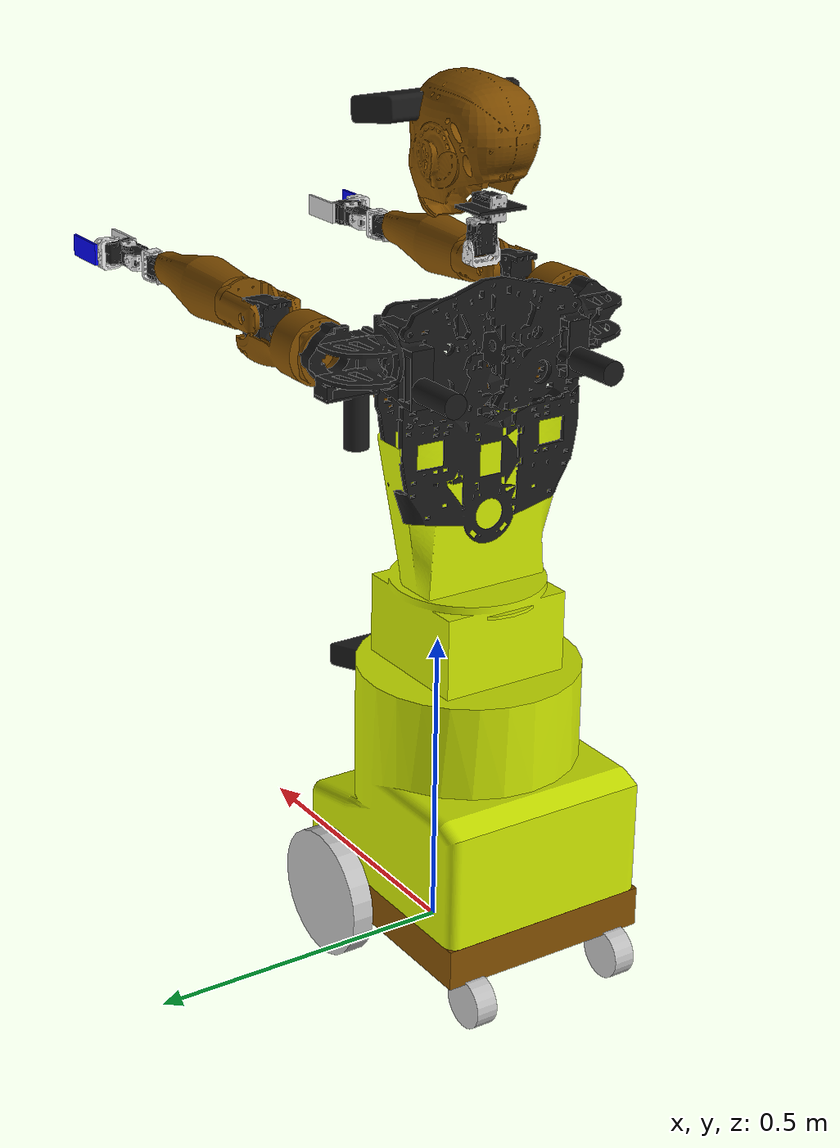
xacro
<?xml version="1.0"?>

<!-- XML namespaces -->
  <robot name="robbie" xmlns:xacro="http://www.ros.org/wiki/xacro">

    <property name="PI" value="3.1415" />
    <property name="M_PI" value="3.14159"/>
    <property name="M_SCALE" value="0.001"/>
    <property name="MESH_EXT" value="stl"/>
    <xacro:include filename="$(find robbie_description)/urdf/robbie_hardware.xacro" />

   <!-- Import all Gazebo-customization elements, including Gazebo colors -->
  <xacro:include filename="$(find robbie_description)/urdf/robbie.gazebo" />

<xacro:my_box name="base_link" lwh="0.41 0.35 0.065" xyz="0 0 -0.032" rpy="0 0 0" mass="0.1" material="Gazebo/FlatBlack">
	        <xacro:gold />
        </xacro:my_box>

 <link name="base_footprint">
      <visual>
        <origin xyz="0 0 0" rpy="0 0 0" />
        <geometry>
          <box size="0.05 0.05 0.001" />
        </geometry>
        <material name="TransparentGreen" />
      </visual>
  </link>

  <xacro:my_cylinder name="left_wheel" l="0.035" r="0.1025" xyz="0 0 0" rpy="1.57 0 0" mass="0.1" material="Gazebo/Grey">
		<xacro:grey1 />
	</xacro:my_cylinder>

  <xacro:my_cylinder name="right_wheel" l="0.035" r="0.1025" xyz="0 0 0" rpy="1.57 0 0" mass="0.1" material="Gazebo/Grey">
		<xacro:grey1 />
	</xacro:my_cylinder>

  <xacro:my_cylinder name="castor_wheel_l" l="0.035" r="0.04" xyz="0 0 0" rpy="1.57 0 0" mass="0.1" material="Gazebo/Grey">
		<xacro:grey1 />
	</xacro:my_cylinder>

  <xacro:my_cylinder name="castor_wheel_r" l="0.035" r="0.04" xyz="0 0 0" rpy="1.57 0 0" mass="0.1" material="Gazebo/Grey">
		<xacro:grey1 />
	</xacro:my_cylinder>

  <link name="deck_link" >
   <visual>
      <geometry>
        <mesh filename="package://robbie_description/meshes/drive_base.stl" scale="${M_SCALE} ${M_SCALE} ${M_SCALE}"/>
      </geometry>
         <xacro:yellow2/>
      <origin rpy="0 0 1.57" xyz=" 0.015 -0.175 -0"/>
    </visual>
    <xacro:default_inertial mass="0.0001" />

  </link>

 <xacro:my_cylinder name="pan_link" l="0.005" r="0.1" xyz="0.0 0 -0.02" rpy="0 0 0" mass="0.2" material="Gazebo/Grey">
			<xacro:yellow2 />
		</xacro:my_cylinder>

<!-- ##############################   upper torso   ##################333333-->

<link name="lower_torso" >
   <visual>
      <geometry>
        <mesh filename="package://robbie_description/meshes/chest_lower.stl" scale="${M_SCALE} ${M_SCALE} ${M_SCALE}"/>
      </geometry>
         <xacro:yellow2/>
      <origin rpy="0 0 1.57" xyz="0 0 0"/>
    </visual>
  </link>

<link name="upper_torso" >
   <visual>
      <geometry>
        <mesh filename="package://robbie_description/meshes/chest.stl" scale="${M_SCALE} ${M_SCALE} ${M_SCALE}"/>
      </geometry>
         <xacro:black/>
      <origin rpy="0 0 -1.57" xyz="0.04 0 -0.15"/>
    </visual>
  </link>

<link name="upper_chest" >
   <visual>
      <geometry>
        <mesh filename="package://robbie_description/meshes/chest_cover.stl" scale="${M_SCALE} ${M_SCALE} ${M_SCALE}"/>
      </geometry>
         <xacro:gold/>
      <origin rpy="0 0 1.57" xyz="0 0 -0.085"/>
    </visual>
  </link>

<!-- ##############################   right arm ##################333333-->
<link name="right_shoulder_tilt" >
   <visual>
      <geometry>
        <mesh filename="package://robbie_description/meshes/right_shoulder_tilt_assy.stl" scale="${M_SCALE} ${M_SCALE} ${M_SCALE}"/>
      </geometry>
       <xacro:black />
      <origin rpy="0 0 1.57" xyz="0 -0.05 -0.05"/>
    </visual>
  <xacro:default_inertial mass="0.05" />
  </link>

<link name="right_shoulder_lift" >
   <visual>
      <geometry>
        <mesh filename="package://robbie_description/meshes/right_shoulder_assy.stl" scale="${M_SCALE} ${M_SCALE} ${M_SCALE}"/>
      </geometry>
       <xacro:black />
      <origin rpy="-1.57 0 1.57" xyz="-0.01 0 -0.025"/>
    </visual>
  <xacro:default_inertial mass="0.05" />
  </link>

<link name="right_elbow_link" >
   <visual>
      <geometry>
        <mesh filename="package://robbie_description/meshes/gearbox.stl" scale="${M_SCALE} ${M_SCALE} ${M_SCALE}"/>
      </geometry>
       <xacro:black/>
      <origin rpy="0 0 0" xyz="0 0 0"/>
    </visual>
  <xacro:default_inertial mass="0.05" />
  </link>

  <link name="right_shoulder_rotate" >
   <visual>
      <geometry>
        <mesh filename="package://robbie_description/meshes/right_upper_arm.stl" scale="${M_SCALE} ${M_SCALE} ${M_SCALE}"/>
      </geometry>
       <xacro:gold/>
      <origin rpy="0 1.57 0" xyz="-0.19 0 0"/>
    </visual>
  <xacro:default_inertial mass="0.05" />
  </link>

  <link name="right_elbow" >
   <visual>
      <geometry>
        <mesh filename="package://robbie_description/meshes/elbow_pivot.stl" scale="${M_SCALE} ${M_SCALE} ${M_SCALE}"/>
      </geometry>
       <xacro:gold />
      <origin rpy="0 0 3.14" xyz="-0.025 -0.055 -0.02"/>
    </visual>
  <xacro:default_inertial mass="0.05" />
  </link>

 <link name="right_forearm_link">
    <visual>
      <geometry>
        <mesh filename="package://robbie_description/meshes/fore_arm.stl" scale="${M_SCALE} ${M_SCALE} ${M_SCALE}"/>
      </geometry>
        <xacro:gold />
      <origin rpy="0 1.57 0" xyz="-0.23 0 0"/>
    </visual>
    <xacro:default_inertial mass="0.05" />
  </link>

  <!-- wrist_yaw_ joint-->
  <xacro:ax12 name="wrist_yaw_servo" xyz="0 0 0" rpy="-1.57 0 -1.57" />
  <xacro:F3_bracket name="wrist_yaw_servo_bracket_f3" xyz="0 0.005 0" rpy="1.57 0 -1.57" />
   <xacro:F2_bracket name="right_wrist_yaw_bracket_f2" xyz="0 0 0" rpy="-1.57 0 -1.57" />

  <!-- wrist_tilt joint-->
  <xacro:ax12 name="wrist_tilt_servo" xyz="0 0 0" rpy="0 -1.57 0" />
  <xacro:F2_bracket name="wrist_tilt_bracket_f2" xyz="0 0 0" rpy="0 -1.57 0" /><!--here-->

 <xacro:F3_bracket name="gripper_bracket_f3" xyz="0 0 0" rpy="1.57 0 -1.57" />

<!-- Gripper_joint-->
  <xacro:ax12 name="gripper_servo" xyz="0 0 0" rpy="1.57 0 0" />
  <xacro:F2_bracket name="gripper_bracket_f2" xyz="0 0 0" rpy="1.57 0 0" />

  <xacro:my_box name="right_finger_link" lwh="-0.08 0.005 0.035" xyz="-0.04 0 0" rpy="0 0 0" mass="0.1" material="Gazebo/FlatBlack">
	        <xacro:blue1 />
        </xacro:my_box>

  <xacro:my_box name="left_finger_link" lwh="0.08 0.005 0.035" xyz="-0.04 0 0" rpy="0 0 0" mass="0.1" material="Gazebo/FlatBlack">
	        <xacro:grey3/>
        </xacro:my_box>

<!-- ##############################   left arm ##################333333-->
<link name="left_shoulder_tilt" >
   <visual>
      <geometry>
        <mesh filename="package://robbie_description/meshes/left_shoulder_tilt_assy.stl" scale="${M_SCALE} ${M_SCALE} ${M_SCALE}"/>
      </geometry>
       <xacro:black />
      <origin rpy="0 0 1.57" xyz="0 0.0 -0.0"/>
    </visual>
   <xacro:default_inertial mass="0.05" />
  </link>

  <link name="left_shoulder_lift" >
   <visual>
      <geometry>
        <mesh filename="package://robbie_description/meshes/left_shoulder_assy.stl" scale="${M_SCALE} ${M_SCALE} ${M_SCALE}"/>
      </geometry>
       <xacro:black />
      <origin rpy="-1.57 0 1.57" xyz="0 -0.06 0"/>
    </visual>
  <xacro:default_inertial mass="0.05" />
  </link>

<link name="left_shoulder_rotate" >
   <visual>
      <geometry>
        <mesh filename="package://robbie_description/meshes/right_upper_arm.stl" scale="${M_SCALE} ${M_SCALE} ${M_SCALE}"/>
      </geometry>
       <xacro:gold/>
      <origin rpy="0 1.57 0" xyz="-0.19 0 0"/>
    </visual>
  <xacro:default_inertial mass="0.05" />
  </link>

<link name="left_elbow_link" >
   <visual>
      <geometry>
        <mesh filename="package://robbie_description/meshes/gearbox.stl" scale="${M_SCALE} ${M_SCALE} ${M_SCALE}"/>
      </geometry>
       <xacro:black/>
      <origin rpy="0 0 0" xyz="0 0 0"/>
    </visual>
  <xacro:default_inertial mass="0.05" />

  </link>

<link name="left_elbow" >
   <visual>
      <geometry>
        <mesh filename="package://robbie_description/meshes/elbow_pivot.stl" scale="${M_SCALE} ${M_SCALE} ${M_SCALE}"/>
      </geometry>
       <xacro:gold />
      <origin rpy="0 0 3.14" xyz="-0.025 -0.055 -0.02"/>
    </visual>
  <xacro:default_inertial mass="0.05" />
  </link>

 <link name="left_forearm_link">
    <visual>
      <geometry>
        <mesh filename="package://robbie_description/meshes/fore_arm.stl" scale="${M_SCALE} ${M_SCALE} ${M_SCALE}"/>
      </geometry>
        <xacro:gold />
      <origin rpy="0 1.57 0" xyz="-0.23 0 0"/>
    </visual>
  <xacro:default_inertial mass="0.05" />
  </link>

 <!-- left_wrist_pan_ joint-->

  <xacro:F3_bracket name="left_wrist_pan_servo_bracket_f3" xyz="0 0.005 0" rpy="1.57 0 -1.57" />

 <!-- left_wrist_yaw joint-->
  <xacro:ax12 name="left_wrist_yaw_servo" xyz="0.0 0 0" rpy="-1.57 0 -1.57" />
  <xacro:F2_bracket name="left_wrist_yaw_bracket_f2" xyz="0 0 0" rpy="-1.57 0 -1.57" />

  <!-- left_wrist_tilt joint-->
  <xacro:ax12 name="left_wrist_tilt_servo" xyz="0 0 0" rpy="0 -1.57 0" />
  <xacro:F2_bracket name="left_wrist_tilt_bracket_f2" xyz="0 0 0" rpy="0 -1.57 0" />

 <xacro:F3_bracket name="left_gripper_bracket_f3" xyz="0 0 0" rpy="1.57 0 -1.57" />

<!-- left_Gripper_joint-->
  <xacro:ax12 name="left_gripper_servo" xyz="0 0 0" rpy="1.57 0 0" />
  <xacro:F2_bracket name="left_gripper_bracket_f2" xyz="0 0 0" rpy="1.57 0 0" />

  <xacro:my_box name="left_right_finger_link" lwh="-0.08 0.005 0.035" xyz="-0.04 0 0" rpy="0 0 0" mass="0.1" material="Gazebo/FlatBlack">
	        <xacro:blue1 />
        </xacro:my_box>

  <xacro:my_box name="left_left_finger_link" lwh="0.08 0.005 0.035" xyz="-0.04 0 0" rpy="0 0 0" mass="0.1" material="Gazebo/FlatBlack">
	        <xacro:grey3/>
        </xacro:my_box>

<!-- head details-->
  <xacro:F2_bracket name="head_tilt_bracket" xyz="0 0 0" rpy="0 3.1415 0"/>

  <xacro:ax12 name="head_tilt_link" xyz="0 0 0" rpy="3.1415 0 0">
	</xacro:ax12>

  <xacro:F3_bracket name="head_pan_bracket" xyz="0 0 0" rpy="0 0 0"/>

  <xacro:ax12 name="head_pan_link" xyz="0 0 0" rpy=" 1.57 0 1.57">
	</xacro:ax12>

  <xacro:F3_bracket name="neck_link" xyz="0 0 0" rpy="1.57 0 -1.570" />

  <xacro:my_box name="head_base_link" lwh="0.06 0.08 0.005" xyz="0 0 0" rpy="0 0 0" mass="0.1" material="Gazebo/FlatBlack">
		<xacro:black />
	</xacro:my_box>

  <link name="head_link" >
   <visual>
      <geometry>
        <mesh filename="package://robbie_description/meshes/head1.stl" scale="${M_SCALE} ${M_SCALE} ${M_SCALE}"/>
      </geometry>
         <material name="gold">
	  <color rgba="0.5 0.3 0 1.0"/>
	</material>
      <origin rpy="0 0 1.57" xyz="0 0 0"/>
    </visual>
  <xacro:default_inertial mass="0.05" />
  </link>

  <link name="head_link_fake">
      <inertial>
        <mass value="0.0001" />
        <origin xyz="0 0 0" />
        <inertia ixx="0.0001" ixy="0.0" ixz="0.0"
                 iyy="0.0001" iyz="0.0"
                 izz="0.0001" />
      </inertial>
    </link>

   <link name="kinect_link">
      <inertial>
        <mass value="1.0" />
        <origin xyz="0 0 0" />
        <inertia ixx="1.0" ixy="0.0" ixz="0.0"
                 iyy="1.0" iyz="0.0"
                 izz="1.0" />
      </inertial>

      <visual>
        <origin xyz=" 0 0 0 " rpy="0 0 0" />
        <geometry>
          <mesh filename="package://robbie_description/meshes/kinect.stl" scale="${M_SCALE} ${M_SCALE} ${M_SCALE}"/>
        </geometry>
        <xacro:ax12_color />
      </visual>

      <collision>
        <origin xyz="0 0 0" rpy="0 0 0" />
        <geometry>
          <mesh filename="package://robbie_description/meshes/kinect.stl" scale="${M_SCALE} ${M_SCALE} ${M_SCALE}"/>
          </geometry>
      </collision>

    </link>

  <link name="head_cam_link">
      <inertial>
        <mass value="1.0" />
        <origin xyz="0 0 0" />
        <inertia ixx="1.0" ixy="0.0" ixz="0.0"
                 iyy="1.0" iyz="0.0"
                 izz="1.0" />
      </inertial>

      <visual>
        <origin xyz=" 0 0 0 " rpy="0 0 0" />
        <geometry>
          <mesh filename="package://robbie_description/meshes/kinect.stl" scale="${M_SCALE} ${M_SCALE} ${M_SCALE}"/>
        </geometry>
        <xacro:ax12_color />
      </visual>

      <collision>
        <origin xyz="0 0 0" rpy="0 0 0" />
        <geometry>
          <mesh filename="package://robbie_description/meshes/kinect.stl" scale="${M_SCALE} ${M_SCALE} ${M_SCALE}"/>
          </geometry>
      </collision>

    </link>

<!-- virtal joints-->
<link name="right_gripper_link">
    <visual>
      <origin rpy="0 0 0" xyz="0.05 0 0"/>
      <geometry>
        <box size="0.001 0.001 0.001"/>
      </geometry>
    </visual>
    <collision>
      <origin rpy="0 0 0" xyz="0.05 0 0"/>
      <geometry>
        <box size="0.001 0.001 0.001"/>
      </geometry>
    </collision>
  </link>
<link name="left_gripper_link">
    <visual>
      <origin rpy="0 0 0" xyz="-0.05 0 0"/>
      <geometry>
        <box size="0.001 0.001 0.001"/>
      </geometry>
    </visual>
    <collision>
      <origin rpy="0 0 0" xyz="-0.05 0 0"/>
      <geometry>
        <box size="0.001 0.001 0.001"/>
      </geometry>
    </collision>
  </link>

<!-- Used for fixing robot to Gazebo 'base_link' -->
  <link name="world"/>

  <joint name="fixed" type="fixed">
    <parent link="world"/>
    <child link="base_footprint"/>
  </joint>

<!-- ##############################   joints ##################333333-->
<joint name="base_footprint_joint" type="fixed">
    	<parent link="base_footprint" />
    	<child link="base_link" />
    	<origin xyz="-0.1 0 0.15" rpy="0 0 0" />
	</joint>

<joint name="base_link_joint" type="fixed">
    	<parent link="base_link" />
    	<child link="deck_link" />
    	<origin xyz="0 0 0.138" rpy="0 0 0" />
	</joint>

  <joint name="base_l_wheel_joint" type="fixed">
    	<parent link="base_link" />
    	<child link="left_wheel" />
    	<origin xyz="0.1 -0.2 -0.04" rpy="0 0 0" />
	</joint>

  <joint name="base_r_wheel_joint" type="fixed">
    	<parent link="base_link" />
    	<child link="right_wheel" />
    	<origin xyz="0.1 0.2 -0.04" rpy="0 0 0" />
	</joint>

  <joint name="castor_wheel_joint_l" type="fixed">
    	<parent link="base_link" />
    	<child link="castor_wheel_l" />
    	<origin xyz="-0.20 -0.13 -0.1" rpy="0 0 0" />
	</joint>

  <joint name="castor_wheel_joint_r" type="fixed">
    	<parent link="base_link" />
    	<child link="castor_wheel_r" />
    	<origin xyz="-0.20 0.13 -0.1" rpy="0 0 0" />
	</joint>
<!--#################  Upper torso#############################-->
 <joint name="pan_joint" type="revolute">
    	<parent link="deck_link" />
    	<child link="pan_link" />
    	<origin xyz="0 0 0.35" rpy="0 0 0" />
        <axis xyz="0 0 1" />
        <limit lower="-1" upper="1" effort="10" velocity="0" />
	</joint>

  <joint name="torso_lower_link" type="fixed">
    	<parent link="pan_link" />
    	<child link="lower_torso" />
    	<origin xyz="0.0 0.005 0." rpy="0 0 0" />
	</joint>

  <joint name="torso_link" type="fixed">
    	<parent link="pan_link" />
    	<child link="upper_torso" />
    	<origin xyz="0.0 0.005 0.465" rpy="0 0 0" />
	</joint>

<joint name="chest_link" type="fixed">
    	<parent link="upper_torso" />
    	<child link="upper_chest" />
    	<origin xyz="0.065 0 -0.04" rpy="0 0 0" />
	</joint>

<joint name="right_arm_tilt_joint" type="revolute">
    	<parent link="upper_torso" />
    	<child link="right_shoulder_tilt" />
    	<origin xyz="0 -0.14 -0.045" rpy="0 0 0" />
        <axis xyz="1 0 0" />
        <limit lower="-1.34" upper="0.1" effort="10" velocity="1" />
	</joint>

<joint name="right_arm_lift_joint" type="revolute">
    	<parent link="right_shoulder_tilt" />
    	<child link="right_shoulder_lift" />
    	<origin xyz="0 -0.078 -0.042" rpy="0 0 0" />
        <axis xyz="0 1 0" />
        <limit lower="-1.57" upper="1.57" effort="10" velocity="1" />
	</joint>

<joint name="right_arm_rotate_joint" type="revolute">
    	<parent link="right_shoulder_lift" />
    	<child link="right_shoulder_rotate" />
    	<origin xyz="0.255 -0.01 0" rpy="0 0 0" />
        <axis xyz="1 0 0" />
        <limit lower="-2.6" upper="2.6" effort="10" velocity="1" />
	</joint>

<joint name="right_elbow_link" type="fixed">
    	<parent link="right_shoulder_rotate" />
    	<child link="right_elbow_link" />
    	<origin xyz="-0.01 0 0.01" rpy="0 0 0" />
        </joint>

<joint name="right_arm_elbow_joint" type="revolute">
    <parent link="right_elbow_link"/>
    <child link="right_elbow"/>
    <origin xyz="0.01 0.01 0.0" rpy="0 0 0" />
    <axis xyz="0 1 0" />
   <limit lower="-2.20" upper="0.1" effort="10" velocity="10" />
  </joint>

  <joint name="right_arm_forearm_link" type="fixed">
    <parent link="right_elbow"/>
    <child link="right_forearm_link"/>
    <origin xyz="0.31 -0.0 -0.0" rpy="0 0 0" />
  </joint>

  <!--right_arm_wrist_yaw_joint-->
  <joint name="right_arm_wrist_yaw_bracket" type="fixed">
    	<parent link="right_forearm_link" />
    	<child link="wrist_yaw_servo_bracket_f3" />
    	<origin xyz="0.0 0.0 0.0" rpy="0 0 0" />

	</joint>
  <joint name="right_arm_wrist_yaw_bracket1" type="fixed">
    	<parent link="wrist_yaw_servo_bracket_f3" />
    	<child link="wrist_yaw_servo" />
    	<origin xyz="0.04 0 0.0" rpy="0 0 0" />
        <axis xyz="0 0 1" />
    	<limit lower="-2.61" upper="2.61" effort="10" velocity="1" />
      	<dynamics damping="0.0"/>
	</joint>

   <joint name="right_arm_wrist_yaw_joint" type="revolute">
    	<parent link="wrist_yaw_servo" />
    	<child link="right_wrist_yaw_bracket_f2" />
    	<origin xyz="0.0 0 0.0" rpy="0 0 0" />
        <axis xyz="0 0 1" />
    	<limit lower="-2.61" upper="2.61" effort="10" velocity="1" />
	</joint>

<joint name="right_arm_wrist_tilt1_bracket" type="fixed">
    	<parent link="right_wrist_yaw_bracket_f2" />
    	<child link="wrist_tilt_bracket_f2" />
    	<origin xyz="0.053 0 0.0" rpy="0 0 0" />
        <axis xyz="0 0 1" />

	</joint>

<!--wrist_tilt_joint-->
  <joint name="right_arm_wrist_tilt_joint" type="revolute">
    	<parent link="wrist_tilt_bracket_f2" />
    	<child link="wrist_tilt_servo" />
    	<origin xyz="0 0 0" rpy="0 0 0" />
        <axis xyz="0 1 0" />
    	<limit lower="-1.57" upper="1.57" effort="10" velocity="1" />
      	<dynamics damping="0.0"/>
	</joint>

  <joint name="right_arm_gripper_bracket" type="fixed">
    	<parent link="wrist_tilt_servo" />
    	<child link="gripper_bracket_f3" />
    	<origin xyz="0.04 0 0.0" rpy="0 0 0" /><!--now-->
	</joint>

   <joint name="right_arm_gripper_servo" type="fixed">
    	<parent link="gripper_bracket_f3" />
    	<child link="gripper_servo" />
    	<origin xyz="0.02 -0.015 0.0" rpy="0 0 0" />
	</joint>

  <joint name="right_gripper_joint" type="fixed">
    <parent link="gripper_bracket_f3"/>
    <child link="right_gripper_link"/>
    <origin xyz="0.06 -0.01 0" rpy="0 0 0" />
  </joint>

<!-- gripper_joint-->
   <joint name="right_arm_gripper_joint" type="revolute">
    	<parent link="gripper_servo" />
    	<child link="gripper_bracket_f2" />
    	<origin xyz="0 0.0 0.0" rpy="0 0 0" />
        <axis xyz="0 0 1" />
    	<limit lower="-0.1" upper="0.50" effort="10" velocity="1" />
      	<dynamics damping="0.0"/>
	</joint>

  <joint name="right_arm_finger_link_l" type="fixed">
    	<parent link="gripper_servo" />
    	<child link="left_finger_link" />
    	<origin xyz="0.08 0.04 0" rpy="0 0 0" />

	</joint>
<!-- moving finger   ############-->
  <joint name="right_arm_finger_link_r" type="fixed">
    	<parent link="gripper_bracket_f2" />
    	<child link="right_finger_link" />
    	<origin xyz="0.08 -0.03 0" rpy="0 0 0" />
	</joint>

<!--##########################        left arm             #############################-->
<joint name="left_arm_tilt_joint" type="revolute">
    	<parent link="upper_torso" />
    	<child link="left_shoulder_tilt" />
    	<origin xyz="0.003 0.142 -0.05" rpy="0 0 0" />
        <axis xyz="-1 0 0" />
        <limit lower="-1.34" upper="0.03" effort="10" velocity="1" />
	</joint>

<joint name="left_arm_lift_joint" type="revolute">
    	<parent link="left_shoulder_tilt" />
    	<child link="left_shoulder_lift" />
    	<origin xyz="0 0.08 -0.04" rpy="0 0 0" />
        <axis xyz="0 1 0" />
        <limit lower="-1.57" upper="1.57" effort="10" velocity="1" />
	</joint>

<joint name="left_arm_rotate_joint" type="revolute">
    	<parent link="left_shoulder_lift" />
    	<child link="left_shoulder_rotate" />
    	<origin xyz="0.24 0 0" rpy="0 0 0" />
        <axis xyz="1 0 0" />
        <limit lower="-2.6" upper="2.6" effort="10" velocity="1" />
	</joint>

<joint name="left_elbow_link" type="fixed">
    	<parent link="left_shoulder_rotate" />
    	<child link="left_elbow_link" />
    	<origin xyz="-0.01 0 0.008" rpy="0 0 0" />
	</joint>

<joint name="left_arm_elbow_joint" type="revolute">
    <parent link="left_elbow_link"/>
    <child link="left_elbow"/>
    <origin xyz="0 0 0" rpy="0 -0 0" />
    <axis xyz="0 1 0" />
   <limit lower="-2.20" upper="0.17" effort="10" velocity="1" />
  </joint>

 <joint name="left_arm_forearm_link" type="fixed">
    <parent link="left_elbow"/>
    <child link="left_forearm_link"/>
    <origin xyz="0.31 -0.0 -0.0" rpy="0 0 0" />
  </joint>

  <joint name="left_arm_wrist_yaw_attach" type="fixed"> <!--revolute-->
    	<parent link="left_forearm_link" />
    	<child link="left_wrist_pan_servo_bracket_f3" />
    	<origin xyz="0. 0 0" rpy="0 0 0" />
      	<dynamics damping="0.0"/>
	</joint>

   <joint name="left_arm_wrist_tilt_bracket" type="fixed">
    	<parent link="left_wrist_pan_servo_bracket_f3" />
    	<child link="left_wrist_yaw_servo" />
    	<origin xyz="0.04 0 0.0" rpy="0 0 0" />
        <axis xyz="1 0 0" />

	</joint>

<!--wrist_yaw_joint-->
  <joint name="left_arm_wrist_yaw_joint" type="revolute"> <!--revolute-->
    	<parent link="left_wrist_yaw_servo" />
    	<child link="left_wrist_yaw_bracket_f2" />
    	<origin xyz="0.0 0 0" rpy="0 0 0" />
        <axis xyz="0 0 1" />
    	<limit lower="-1.57" upper="1.57" effort="10" velocity="1" />
      	<dynamics damping="0.0"/>
	</joint>

  <joint name="left_arm_wrist_yaw_bracket" type="fixed">
    	<parent link="left_wrist_yaw_bracket_f2" />
    	<child link="left_wrist_tilt_bracket_f2" />
    	<origin xyz="0.055 0 0.0" rpy="0 0 0" />
        <axis xyz="1 0 0" />
    	<limit lower="-1.57" upper="1.57" effort="10" velocity="1" />
      	<dynamics damping="0.0"/>
        </joint>

  <!--wrist_tilt_joint-->
  <joint name="left_arm_wrist_tilt_joint" type="revolute"> <!--revolute-->
    	<parent link="left_wrist_tilt_bracket_f2" />
    	<child link="left_wrist_tilt_servo" />
    	<origin xyz="-0 -0.0 0" rpy="0 0 0" />
        <axis xyz="0 1 0" />
    	<limit lower="-1.57" upper="1.57" effort="10" velocity="1" />
      	<dynamics damping="0.0"/>
	</joint>

  <joint name="left_arm_gripper_bracket" type="fixed">
    	<parent link="left_wrist_tilt_servo" />
    	<child link="left_gripper_bracket_f3" />
    	<origin xyz="0.04 0 0.0" rpy="3.14 0 0" />
	</joint>

   <joint name="left_arm_gripper_servo" type="fixed">
    	<parent link="left_gripper_bracket_f3" />
    	<child link="left_gripper_servo" />
    	<origin xyz="0.02 -0.02 -0." rpy="0 0 0" />
	</joint>

  <joint name="left_gripper_joint" type="fixed">
    <origin rpy="0 0 0" xyz="0.06 -0.01 0"/>
    <parent link="left_gripper_bracket_f3"/>
    <child link="left_gripper_link"/>
  </joint>

  <!-- left gripper_joint-->
   <joint name="left_arm_gripper_joint" type="revolute"> <!--revolute-->
    	<parent link="left_gripper_servo" />
    	<child link="left_gripper_bracket_f2" />
    	<origin xyz="0 0.0 0.0" rpy="0 0 0" />
        <axis xyz="0 0 1" />
    	<limit lower="-1.0" upper="0.3" effort="10" velocity="1" />
      	<dynamics damping="0.0"/>
	</joint>

  <joint name="left_arm_finger_link_l" type="fixed">
    	<parent link="left_gripper_servo" />
    	<child link="left_left_finger_link" />
    	<origin xyz="0.08 0.04 0" rpy="0 0 0" />

	</joint>

  <joint name="left_arm_finger_link_r" type="fixed">
    	<parent link="left_gripper_bracket_f2" />
    	<child link="left_right_finger_link" />
    	<origin xyz="0.08 -0.03 0" rpy="0 0 0" />
	</joint>

<!-- #####################################Head joints#########################################-->
  <joint name="head_tilt_servo" type="fixed">
    	<parent link="upper_torso" />
    	<child link="head_tilt_bracket" />
    	<origin xyz="-0.0 0. 0.05" rpy="0 0 0" />
	</joint>
<!-- Head tilt joint-->
  <joint name="head_tilt_mod_joint" type="revolute">
    	<parent link="head_tilt_bracket" />
    	<child link="head_tilt_link" />
    	<origin xyz="0 0 0.0" rpy="0 0 0" />
    	<axis xyz="0 1 0" />
    	<limit lower="-2.6" upper="2.6" effort="10" velocity="1" />
      	<dynamics damping="0.0"/>
	</joint>

<!-- Head tilt joint fake-->
  <joint name="head_tilt_joint" type="fixed">
    	<parent link="head_tilt_bracket" />
    	<child link="head_link_fake" />
    	<origin xyz="0 0 0.0" rpy="0 0 0" />
    	<axis xyz="0 1 0" />
    	<limit lower="-2.6" upper="2.6" effort="10" velocity="1" />
      	<dynamics damping="0.0"/>
	</joint>

  <joint name="head_pan_servo" type="fixed">
    	<parent link="head_tilt_link" />
    	<child link="head_pan_bracket" />
    	<origin xyz="-0.0 0 0.04" rpy="0 0 0" />
	</joint>

  <!-- head_pan_joint-->
	<joint name="head_pan_joint" type="revolute">
    	<parent link="head_pan_bracket" />
    	<child link="head_pan_link" />
    	<origin xyz="0.0 0 0.02" rpy="0 0 0" />
        <origin xyz="0 0 0.0" rpy="0 0 0" />
    	<axis xyz="0 0 1" />
    	<limit lower="-2" upper="2" effort="10" velocity="1" />
      	<dynamics damping="0.0"/>
	</joint>

  <joint name="head_neck_link" type="fixed">
    	<parent link="head_pan_link" />
    	<child link="neck_link" />
    	<origin xyz="-0.04 0 0.0" rpy="0 0 0" />
	</joint>

  <joint name="neck_joint" type="fixed">
    	<parent link="neck_link" />
    	<child link="head_base_link" />
    	<origin xyz="0.02 0 0.0" rpy="0 0 0" />
	</joint>

  <joint name="head_joint" type="fixed">
    	<parent link="head_base_link" />
    	<child link="head_link" />
    	<origin xyz="-0.02 -0.097 0" rpy="0 0 0" />
	</joint>

  <joint name="kinect_joint" type="fixed">
    	<parent link="base_link" />
    	<child link="kinect_link" />
    	<origin xyz="0.2 0 0.32" rpy="0 0 0" />
	</joint>
<joint name="kinect_depth_joint" type="fixed">
         <origin xyz="0 0.0125 0.015" rpy="0 0 0" />
          <parent link="kinect_link" />
          <child link="kinect_depth_frame" />
      </joint>

      <link name="kinect_depth_frame">
      <inertial>
         <mass value="0.000001" />
         <origin xyz="0 0 0" />
         <inertia ixx="0.0001" ixy="0.0" ixz="0.0"
            iyy="0.0001" iyz="0.0"
            izz="0.0001" />
         </inertial>
      </link>

      <joint name="kinect_depth_optical_joint" type="fixed">
         <origin xyz="0 0 0" rpy="${-PI/2} 0 ${-PI/2}" />
         <parent link="kinect_depth_frame" />
         <child link="kinect_depth_optical_frame" />
      </joint>

      <link name="kinect_depth_optical_frame">
         <inertial>
            <mass value="0.000001" />
            <origin xyz="0 0 0" />
            <inertia ixx="0.0001" ixy="0.0" ixz="0.0"
               iyy="0.0001" iyz="0.0"
               izz="0.0001" />
         </inertial>
      </link>

      <joint name="kinect_rgb_joint" type="fixed">
         <origin xyz="0 -0.0125 0.015" rpy="0 0 0" />
         <parent link="kinect_link" />
         <child link="kinect_rgb_frame" />
      </joint>

      <link name="kinect_rgb_frame">
         <inertial>
         <mass value="0.000001" />
         <origin xyz="0 0 0" />
         <inertia ixx="0.0001" ixy="0.0" ixz="0.0"
            iyy="0.0001" iyz="0.0"
            izz="0.0001" />
         </inertial>
      </link>

      <joint name="kinect_rgb_optical_joint" type="fixed">
         <origin xyz="0 0 0" rpy="${-PI/2} 0 ${-PI/2}" />
         <parent link="kinect_rgb_frame" />
         <child link="kinect_rgb_optical_frame" />
      </joint>

      <link name="kinect_rgb_optical_frame">
         <inertial>
            <mass value="0.000001" />
            <origin xyz="0 0 0" />
            <inertia ixx="0.0001" ixy="0.0" ixz="0.0"
               iyy="0.0001" iyz="0.0"
               izz="0.0001" />
         </inertial>
      </link>

  <joint name="head_cam_joint" type="fixed">
    	<parent link="head_link" />
    	<child link="head_cam_link" />
    	<origin xyz="0.15 0.11 0.13" rpy="0 0.1 0" />
	</joint>
<joint name="head_cam_depth_joint" type="fixed">
         <origin xyz="0 0.0125 0.015" rpy="0 0 0" />
          <parent link="head_cam_link" />
          <child link="head_cam_depth_frame" />
      </joint>

      <link name="head_cam_depth_frame">
      <inertial>
         <mass value="0.000001" />
         <origin xyz="0 0 0" />
         <inertia ixx="0.0001" ixy="0.0" ixz="0.0"
            iyy="0.0001" iyz="0.0"
            izz="0.0001" />
         </inertial>
      </link>

      <joint name="head_cam_depth_optical_joint" type="fixed">
         <origin xyz="0 0 0" rpy="${-PI/2} 0 ${-PI/2}" />
         <parent link="head_cam_depth_frame" />
         <child link="head_cam_depth_optical_frame" />
      </joint>

      <link name="head_cam_depth_optical_frame">
         <inertial>
            <mass value="0.000001" />
            <origin xyz="0 0 0" />
            <inertia ixx="0.0001" ixy="0.0" ixz="0.0"
               iyy="0.0001" iyz="0.0"
               izz="0.0001" />
         </inertial>
      </link>

      <joint name="head_cam_rgb_joint" type="fixed">
         <origin xyz="0 -0.0125 0.015" rpy="0 0 0" />
         <parent link="head_cam_link" />
         <child link="head_cam_rgb_frame" />
      </joint>

      <link name="head_cam_rgb_frame">
         <inertial>
         <mass value="0.000001" />
         <origin xyz="0 0 0" />
         <inertia ixx="0.0001" ixy="0.0" ixz="0.0"
            iyy="0.0001" iyz="0.0"
            izz="0.0001" />
         </inertial>
      </link>

      <joint name="head_cam_rgb_optical_joint" type="fixed">
         <origin xyz="0 0 0" rpy="${-PI/2} 0 ${-PI/2}" />
         <parent link="head_cam_rgb_frame" />
         <child link="head_cam_rgb_optical_frame" />
      </joint>

      <link name="head_cam_rgb_optical_frame">
         <inertial>
            <mass value="0.000001" />
            <origin xyz="0 0 0" />
            <inertia ixx="0.0001" ixy="0.0" ixz="0.0"
               iyy="0.0001" iyz="0.0"
               izz="0.0001" />
         </inertial>
      </link>

<gazebo reference="robbie">
  	</gazebo>

<transmission name="tran1">
    <type>transmission_interface/SimpleTransmission</type>
    <joint name="pan_joint">
      <hardwareInterface>EffortJointInterface</hardwareInterface>
    </joint>
    <actuator name="motor1">
      <hardwareInterface>EffortJointInterface</hardwareInterface>
      <mechanicalReduction>1</mechanicalReduction>
    </actuator>
  </transmission>

<transmission name="tran2">
    <type>transmission_interface/SimpleTransmission</type>
    <joint name="right_arm_tilt_joint">
      <hardwareInterface>EffortJointInterface</hardwareInterface>
    </joint>
    <actuator name="motor2">
      <hardwareInterface>EffortJointInterface</hardwareInterface>
      <mechanicalReduction>1</mechanicalReduction>
    </actuator>
  </transmission>
<transmission name="tran3">
    <type>transmission_interface/SimpleTransmission</type>
    <joint name="right_arm_lift_joint">
      <hardwareInterface>EffortJointInterface</hardwareInterface>
    </joint>
    <actuator name="motor3">
      <hardwareInterface>EffortJointInterface</hardwareInterface>
      <mechanicalReduction>1</mechanicalReduction>
    </actuator>
  </transmission>

<transmission name="tran4">
    <type>transmission_interface/SimpleTransmission</type>
    <joint name="right_arm_rotate_joint">
      <hardwareInterface>EffortJointInterface</hardwareInterface>
    </joint>
    <actuator name="motor4">
      <hardwareInterface>EffortJointInterface</hardwareInterface>
      <mechanicalReduction>1</mechanicalReduction>
    </actuator>
  </transmission>

<transmission name="tran5">
    <type>transmission_interface/SimpleTransmission</type>
    <joint name="right_arm_elbow_joint">
      <hardwareInterface>EffortJointInterface</hardwareInterface>
    </joint>
    <actuator name="motor5">
      <hardwareInterface>EffortJointInterface</hardwareInterface>
      <mechanicalReduction>1</mechanicalReduction>
    </actuator>
  </transmission>

<transmission name="tran7">
    <type>transmission_interface/SimpleTransmission</type>
    <joint name="right_arm_wrist_yaw_joint">
      <hardwareInterface>EffortJointInterface</hardwareInterface>
    </joint>
    <actuator name="motor7">
      <hardwareInterface>EffortJointInterface</hardwareInterface>
      <mechanicalReduction>1</mechanicalReduction>
    </actuator>
  </transmission>

<transmission name="tran6">
    <type>transmission_interface/SimpleTransmission</type>
    <joint name="right_arm_wrist_tilt_joint">
      <hardwareInterface>EffortJointInterface</hardwareInterface>
    </joint>
    <actuator name="motor6">
      <hardwareInterface>EffortJointInterface</hardwareInterface>
      <mechanicalReduction>1</mechanicalReduction>
    </actuator>
  </transmission>

<transmission name="tran8">
    <type>transmission_interface/SimpleTransmission</type>
    <joint name="right_arm_gripper_joint">
      <hardwareInterface>EffortJointInterface</hardwareInterface>
    </joint>
    <actuator name="motor8">
      <hardwareInterface>EffortJointInterface</hardwareInterface>
      <mechanicalReduction>1</mechanicalReduction>
    </actuator>
  </transmission>

<transmission name="tran9">
    <type>transmission_interface/SimpleTransmission</type>
    <joint name="left_arm_tilt_joint">
      <hardwareInterface>EffortJointInterface</hardwareInterface>
    </joint>
    <actuator name="motor9">
      <hardwareInterface>EffortJointInterface</hardwareInterface>
      <mechanicalReduction>1</mechanicalReduction>
    </actuator>
  </transmission>
<transmission name="tran10">
    <type>transmission_interface/SimpleTransmission</type>
    <joint name="left_arm_lift_joint">
      <hardwareInterface>EffortJointInterface</hardwareInterface>
    </joint>
    <actuator name="motor10">
      <hardwareInterface>EffortJointInterface</hardwareInterface>
      <mechanicalReduction>1</mechanicalReduction>
    </actuator>
  </transmission>

<transmission name="tran11">
    <type>transmission_interface/SimpleTransmission</type>
    <joint name="left_arm_rotate_joint">
      <hardwareInterface>EffortJointInterface</hardwareInterface>
    </joint>
    <actuator name="motor12">
      <hardwareInterface>EffortJointInterface</hardwareInterface>
      <mechanicalReduction>1</mechanicalReduction>
    </actuator>
  </transmission>

<transmission name="tran13">
    <type>transmission_interface/SimpleTransmission</type>
    <joint name="left_arm_elbow_joint">
      <hardwareInterface>EffortJointInterface</hardwareInterface>
    </joint>
    <actuator name="motor13">
      <hardwareInterface>EffortJointInterface</hardwareInterface>
      <mechanicalReduction>1</mechanicalReduction>
    </actuator>
  </transmission>

<transmission name="tran14">
    <type>transmission_interface/SimpleTransmission</type>
    <joint name="left_arm_wrist_tilt_joint">
      <hardwareInterface>EffortJointInterface</hardwareInterface>
    </joint>
    <actuator name="motor14">
      <hardwareInterface>EffortJointInterface</hardwareInterface>
      <mechanicalReduction>1</mechanicalReduction>
    </actuator>
  </transmission>

<transmission name="tran15">
    <type>transmission_interface/SimpleTransmission</type>
    <joint name="left_arm_wrist_yaw_joint">
      <hardwareInterface>EffortJointInterface</hardwareInterface>
    </joint>
    <actuator name="motor14">
      <hardwareInterface>EffortJointInterface</hardwareInterface>
      <mechanicalReduction>1</mechanicalReduction>
    </actuator>
  </transmission>

<transmission name="tran16">
    <type>transmission_interface/SimpleTransmission</type>
    <joint name="left_arm_gripper_joint">
      <hardwareInterface>EffortJointInterface</hardwareInterface>
    </joint>
    <actuator name="motor16">
      <hardwareInterface>EffortJointInterface</hardwareInterface>
      <mechanicalReduction>1</mechanicalReduction>
    </actuator>
  </transmission>

<transmission name="tran17">
    <type>transmission_interface/SimpleTransmission</type>
    <joint name="head_tilt_mod_joint">
      <hardwareInterface>EffortJointInterface</hardwareInterface>
    </joint>
    <actuator name="motor17">
      <hardwareInterface>EffortJointInterface</hardwareInterface>
      <mechanicalReduction>1</mechanicalReduction>
    </actuator>
  </transmission>

<transmission name="tran18">
    <type>transmission_interface/SimpleTransmission</type>
    <joint name="head_pan_joint">
      <hardwareInterface>EffortJointInterface</hardwareInterface>
    </joint>
    <actuator name="motor18">
      <hardwareInterface>EffortJointInterface</hardwareInterface>
      <mechanicalReduction>1</mechanicalReduction>
    </actuator>
  </transmission>

</robot>

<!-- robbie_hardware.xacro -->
<robot name="robbie" xmlns:xacro="http://ros.org/wiki/xacro">

  <!-- ============================  A Few Color Macros  ============================ -->

	<xacro:macro name="black">
		<material name="black">
			<color rgba="0.1 0.1 0.1 1.0"/>
		</material>
	</xacro:macro>

	<xacro:macro name="White">
		<material name="White">
			<color rgba="1.0 1.0 1.0 1.0"/>
		</material>
	</xacro:macro>

	<xacro:macro name="grey1">
		<material name="grey1">
			<color rgba="0.75 0.75 0.75 1.0"/>
		</material>
	</xacro:macro>

	<xacro:macro name="grey2">
		<material name="grey2">
			<color rgba="0.6 0.6 0.6 1.0"/>
		</material>
	</xacro:macro>

	<xacro:macro name="grey3">
		<material name="grey3">
			<color rgba="0.8 0.8 0.8 1.0"/>
		</material>
	</xacro:macro>

	<xacro:macro name="ax12_color">
		<material name="ax12_color">
			<color rgba="0.2 0.2 0.2 1.0"/>
		</material>
	</xacro:macro>

	<xacro:macro name="bracket_color">
		<material name="bracket_color">
			<color rgba="0.9 0.9 0.9 1.0"/>
		</material>
	</xacro:macro>

        <xacro:macro name="cyan1">
		<material name="cyan1">
			<color rgba="0 0.9 0.9 1.0"/>
		</material>
	</xacro:macro>

	<xacro:macro name="cyan2">
		<material name="cyan2">
	     <color rgba="0 0.7 0.7 1.0"/>
		</material>
	</xacro:macro>

	<xacro:macro name="cyan3">
		<material name="cyan3">
	     <color rgba="0 0.5 0.5 1.0"/>
		</material>
	</xacro:macro>

        <xacro:macro name="yellow2">
		<material name="yellow2">
			<color rgba="0.8 0.9 0 1.0"/>
		</material>
	</xacro:macro>

        <xacro:macro name="gold">
		<material name="gold">
			<color rgba="0.5 0.3 0 1.0"/>
		</material>
	</xacro:macro>

	<xacro:macro name="green1">
		<material name="green1">
			<color rgba="0 1 0 1.0"/>
		</material>
	</xacro:macro>

	<xacro:macro name="green2">
		<material name="green2">
			<color rgba="0.1 0.8 0 1.0"/>
		</material>
	</xacro:macro>

        <xacro:macro name="blue1">
		<material name="blue1">
			<color rgba="0 0 0.9 1.0"/>
		</material>
	</xacro:macro>

        <xacro:macro name="ax12_color">
		<material name="ax12_color">
			<color rgba="0.1 0.1 0.1 1.0"/>
		</material>
	</xacro:macro>

 	<!-- ============================   A Few Shape Macros  ============================ -->
	<xacro:macro name="ax12" params="name xyz rpy">
		<link name="${name}">
			<visual>
				<origin xyz="${xyz}" rpy="${rpy}" />
				<geometry>
					<mesh filename="package://robbie_description/meshes/ax12_box2.${MESH_EXT}" scale="${M_SCALE} ${M_SCALE} ${M_SCALE}"/>
				</geometry>
				<xacro:ax12_color />
             </visual>

             <collision>
				<origin xyz="${xyz}" rpy="${rpy}" />
				<geometry>

					<mesh filename="package://robbie_description/meshes/ax12_box2.${MESH_EXT}" scale="${M_SCALE} ${M_SCALE} ${M_SCALE}"/>

				</geometry>
             </collision>
             <xacro:default_inertial mass="0.055" />
        </link>
        <xacro:default_gazebo name="${name}" material="Gazebo/FlatBlack" />
	</xacro:macro>

	<xacro:macro name="F2_bracket" params="name xyz rpy">
		<link name="${name}">
			<visual>
				<origin xyz="${xyz}" rpy="${rpy}" />
				<geometry>
          			<mesh filename="package://robbie_description/meshes/F2.${MESH_EXT}" scale="${M_SCALE} ${M_SCALE} ${M_SCALE}"/>
				</geometry>
				<xacro:bracket_color />
             </visual>
             <collision>
				<origin xyz="${xyz}" rpy="${rpy}" />
					<geometry>

          				<mesh filename="package://robbie_description/meshes/F2.${MESH_EXT}" scale="${M_SCALE} ${M_SCALE} ${M_SCALE}"/>

					</geometry>
             </collision>
             <xacro:default_inertial mass="0.02" />
        </link>
        <xacro:default_gazebo name="${name}" material="Gazebo/White" />
	</xacro:macro>

	<xacro:macro name="F3_bracket" params="name xyz rpy">
		<link name="${name}">
			<visual>
				<origin xyz="${xyz}" rpy="${rpy}" />
				<geometry>
          			<mesh filename="package://robbie_description/meshes/F3.${MESH_EXT}" scale="${M_SCALE} ${M_SCALE} ${M_SCALE}"/>
				</geometry><material name="grey1">
			<color rgba="0.75 0.75 0.75 1.0"/>
		</material>
				<xacro:bracket_color />
             </visual>
             <collision>
				<origin xyz="${xyz}" rpy="${rpy}" />
					<geometry>

          				<mesh filename="package://robbie_description/meshes/F3.${MESH_EXT}" scale="${M_SCALE} ${M_SCALE} ${M_SCALE}"/>

					</geometry>
             </collision>
             <xacro:default_inertial mass="0.01" />
        </link>
        <xacro:default_gazebo name="${name}" material="Gazebo/White" />
	</xacro:macro>

	<xacro:macro name="bracket_f3" params="name xyz rpy">
		<link name="${name}">
			<visual>
				<origin xyz="${xyz}" rpy="${rpy}" />
				<geometry>
					<box size="0.025 0.04 0.006" />
				</geometry>
				<xacro:bracket_color />
             </visual>
             <collision>
				<origin xyz="${xyz}" rpy="${rpy}" />
					<geometry>
						<box size="0.025 0.04 0.006" />
					</geometry>
             </collision>
             <xacro:default_inertial mass="0.02" />
        </link>
        <xacro:default_gazebo name="${name}" material="Gazebo/White" />
	</xacro:macro>

	<xacro:macro name="bracket2" params="name xyz rpy">
		<link name="${name}">
			<visual>
				<origin xyz="${xyz}" rpy="${rpy}" />
				<geometry>
					<box size="0.05 0.115 0.07" />
				</geometry>
				<xacro:bracket_color />
             </visual>
             <collision>
				<origin xyz="${xyz}" rpy="${rpy}" />
					<geometry>
					<box size="0.05 0.115 0.07" />
					</geometry>
             </collision>
             <xacro:default_inertial mass="0.01" />
        </link>
        <xacro:default_gazebo name="${name}" material="Gazebo/White" />
	</xacro:macro>

        <xacro:macro name="bracket3" params="name xyz rpy">
		<link name="${name}">
			<visual>
				<origin xyz="${xyz}" rpy="${rpy}" />
				<geometry>
					<box size="0.05 0.032 0.005" />
				</geometry>
				<xacro:bracket_color />
             </visual>
             <collision>
				<origin xyz="${xyz}" rpy="${rpy}" />
					<geometry>
					<box size="0.05 0.032 0.005" />
					</geometry>
             </collision>
             <xacro:default_inertial mass="0.01" />
        </link>
        <xacro:default_gazebo name="${name}" material="Gazebo/White" />
	</xacro:macro>

        <xacro:macro name="my_box" params="name lwh xyz rpy mass material *rviz_color">
		<link name="${name}">
			<visual>
				<origin xyz="${xyz}" rpy="${rpy}" />
				<geometry>
					<box size="${lwh}" />
				</geometry>
			    <xacro:insert_block name="rviz_color" />
             </visual>
             <collision>
				<origin xyz="${xyz}" rpy="${rpy}" />
					<geometry>
						<box size="${lwh}" />
					</geometry>
              <xacro:default_inertial mass="0.01" />
             </collision>

        </link>

        <xacro:default_gazebo name="${name}" material="${material}" />
	</xacro:macro>

	<xacro:macro name="my_cylinder" params="name l r xyz rpy mass material *rviz_color">
		<link name="${name}">
			<visual>
				<origin xyz="${xyz}" rpy="${rpy}" />
				<geometry>
					<cylinder length="${l}" radius="${r}" />
				</geometry>
            	<xacro:insert_block name="rviz_color" />
            </visual>
            <collision>
				<origin xyz="${xyz}" rpy="${rpy}" />
					<geometry>
						<cylinder length="${l}" radius="${r}" />
					</geometry>
            </collision>
            <xacro:default_inertial mass="${mass}" />
        </link>
        <xacro:default_gazebo name="${name}" material="${material}" />
	</xacro:macro>

    <xacro:macro name="default_inertial" params="mass">
		<inertial>
			<mass value="${mass}" />
			<inertia ixx="0.0001" ixy="0.0" ixz="0.0"
                     iyy="0.0001" iyz="0.0"
                     izz="0.0001" />
			</inertial>
    </xacro:macro>

    <xacro:macro name="default_gazebo" params="name material">
 		<gazebo reference="${name}">
			<material>${material}</material>
			<selfCollide>false</selfCollide>
			<turnGravityOff>false</turnGravityOff>
		</gazebo>
    </xacro:macro>

</robot>
